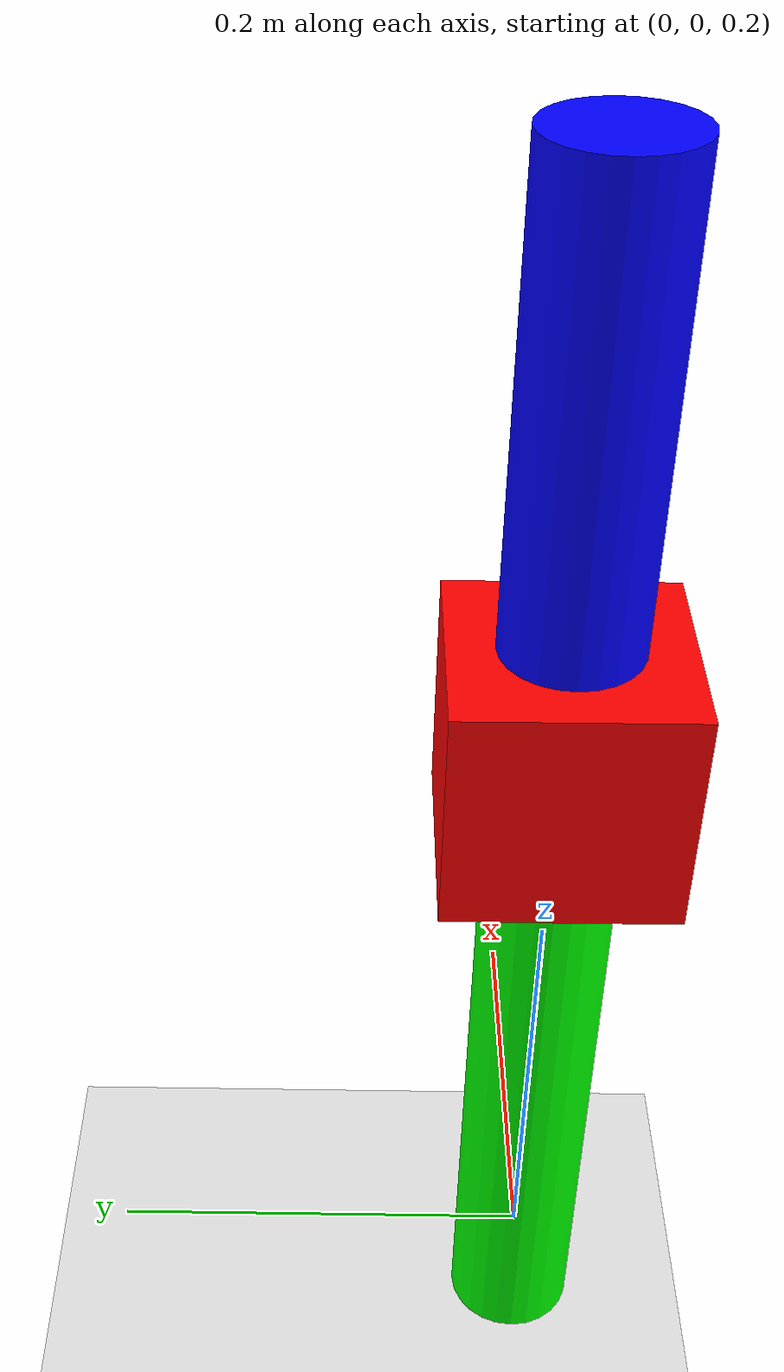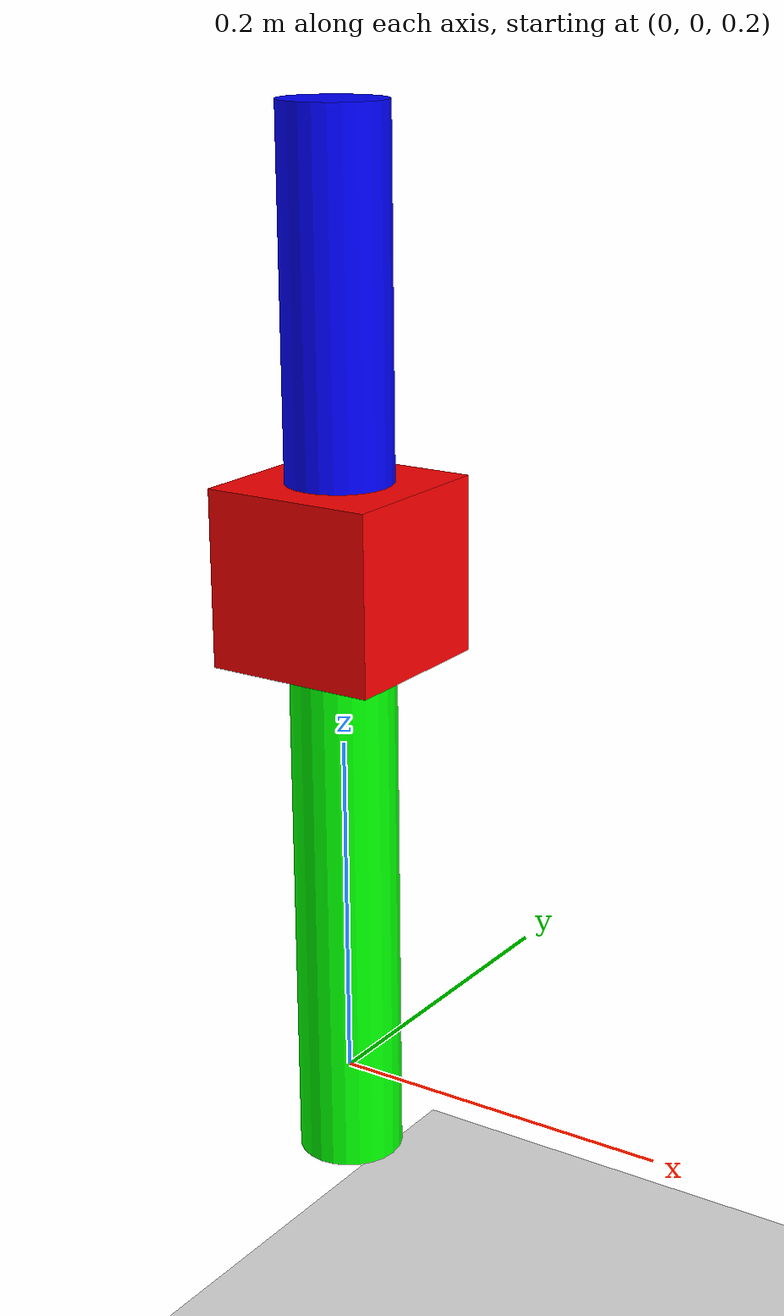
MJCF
<mujoco model="test_scene">
  <option timestep="0.002" gravity="0 0 -9.81"/>

  <worldbody>
    <light diffuse=".5 .5 .5" pos="0 0 3" dir="0 0 -1"/>
    <geom type="plane" size="1 1 0.1" rgba=".9 .9 .9 1"/>

    <body name="box" pos="0 0 0.5">
      <freejoint name="box_free"/>
      <geom type="box" size="0.05 0.05 0.05" rgba="1 0 0 1" name="Box"/>
    </body>

    <body name="link1" pos="0 0 0.3">
      <joint name="joint_1" type="hinge" axis="0 0 1" range="-3.14 3.14"/>
      <geom type="cylinder" size="0.03 0.15" rgba="0 1 0 1"/>
    </body>

    <body name="link2" pos="0 0 0.6">
      <joint name="joint_2" type="hinge" axis="0 0 1" range="-3.14 3.14"/>
      <geom type="cylinder" size="0.03 0.15" rgba="0 0 1 1"/>
    </body>

    <camera name="cam0" pos="1 1 1" xyaxes="0 -1 0 1 0 0"/>
  </worldbody>

  <equality>
    <connect name="grasp_eq" body1="link2" body2="box" anchor="0 0 0" active="false"/>
  </equality>
</mujoco>
